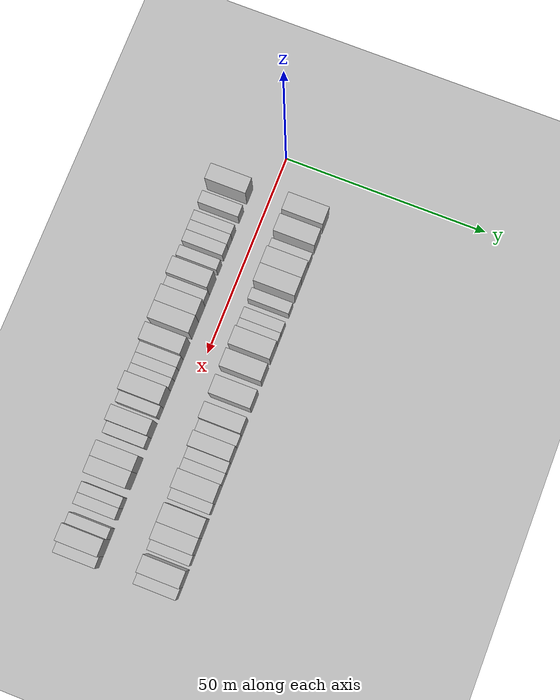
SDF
<sdf version="1.6">
 <world name="default">
  <include><name>ground_plane_1</name><uri>model://HANNAS_ground_plane</uri></include>
  <include>
   <name>ground_plane_2</name>
   <uri>model://HANNAS_ground_plane</uri>
   <pose>100 0 0  0 0 0</pose>
  </include>
  <model name="building_1">
   <static>1</static>
   <pose>12.1943 9.5000 0 0.000000 0.000000 1.570796</pose>
   <link name="link">
    <pose>0 0 4.50 0 0 0</pose>
    <collision name="collision"><geometry><box><size>10.0000 4.3886 9.0000</size></box></geometry></collision>
    <visual name="visual">
     <cast_shadows>0</cast_shadows>
     <geometry><box><size>10.0000 4.3886 9.0000</size></box></geometry>
     <material>
      <script>
       <uri>model://HANNAS_wall/materials/scripts</uri>
       <uri>model://HANNAS_wall/materials/textures</uri>
       <name>vrc/HANNAS_wall</name>
      </script>
     </material>
    </visual>
   </link>
  </model>
  <model name="building_2">
   <static>1</static>
   <pose>17.5279 9.5000 0 0.000000 0.000000 1.570796</pose>
   <link name="link">
    <pose>0 0 4.50 0 0 0</pose>
    <collision name="collision"><geometry><box><size>10.0000 4.2786 9.0000</size></box></geometry></collision>
    <visual name="visual">
     <cast_shadows>0</cast_shadows>
     <geometry><box><size>10.0000 4.2786 9.0000</size></box></geometry>
     <material>
      <script>
       <uri>model://HANNAS_wall/materials/scripts</uri>
       <uri>model://HANNAS_wall/materials/textures</uri>
       <name>vrc/HANNAS_wall</name>
      </script>
     </material>
    </visual>
   </link>
  </model>
  <model name="building_3">
   <static>1</static>
   <pose>22.0547 9.5000 0 0.000000 0.000000 1.570796</pose>
   <link name="link">
    <pose>0 0 3.00 0 0 0</pose>
    <collision name="collision"><geometry><box><size>10.0000 2.7752 6.0000</size></box></geometry></collision>
    <visual name="visual">
     <cast_shadows>0</cast_shadows>
     <geometry><box><size>10.0000 2.7752 6.0000</size></box></geometry>
     <material>
      <script>
       <uri>model://HANNAS_wall/materials/scripts</uri>
       <uri>model://HANNAS_wall/materials/textures</uri>
       <name>vrc/HANNAS_wall</name>
      </script>
     </material>
    </visual>
   </link>
  </model>
  <model name="building_4">
   <static>1</static>
   <pose>25.5473 9.5000 0 0.000000 0.000000 1.570796</pose>
   <link name="link">
    <pose>0 0 4.50 0 0 0</pose>
    <collision name="collision"><geometry><box><size>10.0000 4.2099 9.0000</size></box></geometry></collision>
    <visual name="visual">
     <cast_shadows>0</cast_shadows>
     <geometry><box><size>10.0000 4.2099 9.0000</size></box></geometry>
     <material>
      <script>
       <uri>model://HANNAS_wall/materials/scripts</uri>
       <uri>model://HANNAS_wall/materials/textures</uri>
       <name>vrc/HANNAS_wall</name>
      </script>
     </material>
    </visual>
   </link>
  </model>
  <model name="building_5">
   <static>1</static>
   <pose>29.8634 9.5000 0 0.000000 0.000000 1.570796</pose>
   <link name="link">
    <pose>0 0 4.50 0 0 0</pose>
    <collision name="collision"><geometry><box><size>10.0000 4.4223 9.0000</size></box></geometry></collision>
    <visual name="visual">
     <cast_shadows>0</cast_shadows>
     <geometry><box><size>10.0000 4.4223 9.0000</size></box></geometry>
     <material>
      <script>
       <uri>model://HANNAS_wall/materials/scripts</uri>
       <uri>model://HANNAS_wall/materials/textures</uri>
       <name>vrc/HANNAS_wall</name>
      </script>
     </material>
    </visual>
   </link>
  </model>
  <model name="building_6">
   <static>1</static>
   <pose>34.4579 9.5000 0 0.000000 0.000000 1.570796</pose>
   <link name="link">
    <pose>0 0 3.00 0 0 0</pose>
    <collision name="collision"><geometry><box><size>10.0000 2.7668 6.0000</size></box></geometry></collision>
    <visual name="visual">
     <cast_shadows>0</cast_shadows>
     <geometry><box><size>10.0000 2.7668 6.0000</size></box></geometry>
     <material>
      <script>
       <uri>model://HANNAS_wall/materials/scripts</uri>
       <uri>model://HANNAS_wall/materials/textures</uri>
       <name>vrc/HANNAS_wall</name>
      </script>
     </material>
    </visual>
   </link>
  </model>
  <model name="building_7">
   <static>1</static>
   <pose>39.2007 9.5000 0 0.000000 0.000000 1.570796</pose>
   <link name="link">
    <pose>0 0 3.00 0 0 0</pose>
    <collision name="collision"><geometry><box><size>10.0000 2.7189 6.0000</size></box></geometry></collision>
    <visual name="visual">
     <cast_shadows>0</cast_shadows>
     <geometry><box><size>10.0000 2.7189 6.0000</size></box></geometry>
     <material>
      <script>
       <uri>model://HANNAS_wall/materials/scripts</uri>
       <uri>model://HANNAS_wall/materials/textures</uri>
       <name>vrc/HANNAS_wall</name>
      </script>
     </material>
    </visual>
   </link>
  </model>
  <model name="building_8">
   <static>1</static>
   <pose>41.7880 9.5000 0 0.000000 0.000000 1.570796</pose>
   <link name="link">
    <pose>0 0 3.00 0 0 0</pose>
    <collision name="collision"><geometry><box><size>10.0000 2.4557 6.0000</size></box></geometry></collision>
    <visual name="visual">
     <cast_shadows>0</cast_shadows>
     <geometry><box><size>10.0000 2.4557 6.0000</size></box></geometry>
     <material>
      <script>
       <uri>model://HANNAS_wall/materials/scripts</uri>
       <uri>model://HANNAS_wall/materials/textures</uri>
       <name>vrc/HANNAS_wall</name>
      </script>
     </material>
    </visual>
   </link>
  </model>
  <model name="building_9">
   <static>1</static>
   <pose>45.2294 9.5000 0 0.000000 0.000000 1.570796</pose>
   <link name="link">
    <pose>0 0 4.50 0 0 0</pose>
    <collision name="collision"><geometry><box><size>10.0000 4.4270 9.0000</size></box></geometry></collision>
    <visual name="visual">
     <cast_shadows>0</cast_shadows>
     <geometry><box><size>10.0000 4.4270 9.0000</size></box></geometry>
     <material>
      <script>
       <uri>model://HANNAS_wall/materials/scripts</uri>
       <uri>model://HANNAS_wall/materials/textures</uri>
       <name>vrc/HANNAS_wall</name>
      </script>
     </material>
    </visual>
   </link>
  </model>
  <model name="building_10">
   <static>1</static>
   <pose>50.6140 9.5000 0 0.000000 0.000000 1.570796</pose>
   <link name="link">
    <pose>0 0 4.50 0 0 0</pose>
    <collision name="collision"><geometry><box><size>10.0000 4.3423 9.0000</size></box></geometry></collision>
    <visual name="visual">
     <cast_shadows>0</cast_shadows>
     <geometry><box><size>10.0000 4.3423 9.0000</size></box></geometry>
     <material>
      <script>
       <uri>model://HANNAS_wall/materials/scripts</uri>
       <uri>model://HANNAS_wall/materials/textures</uri>
       <name>vrc/HANNAS_wall</name>
      </script>
     </material>
    </visual>
   </link>
  </model>
  <model name="building_11">
   <static>1</static>
   <pose>57.0152 9.5000 0 0.000000 0.000000 1.570796</pose>
   <link name="link">
    <pose>0 0 4.50 0 0 0</pose>
    <collision name="collision"><geometry><box><size>10.0000 4.4601 9.0000</size></box></geometry></collision>
    <visual name="visual">
     <cast_shadows>0</cast_shadows>
     <geometry><box><size>10.0000 4.4601 9.0000</size></box></geometry>
     <material>
      <script>
       <uri>model://HANNAS_wall/materials/scripts</uri>
       <uri>model://HANNAS_wall/materials/textures</uri>
       <name>vrc/HANNAS_wall</name>
      </script>
     </material>
    </visual>
   </link>
  </model>
  <model name="building_12">
   <static>1</static>
   <pose>63.1867 9.5000 0 0.000000 0.000000 1.570796</pose>
   <link name="link">
    <pose>0 0 4.50 0 0 0</pose>
    <collision name="collision"><geometry><box><size>10.0000 3.8828 9.0000</size></box></geometry></collision>
    <visual name="visual">
     <cast_shadows>0</cast_shadows>
     <geometry><box><size>10.0000 3.8828 9.0000</size></box></geometry>
     <material>
      <script>
       <uri>model://HANNAS_wall/materials/scripts</uri>
       <uri>model://HANNAS_wall/materials/textures</uri>
       <name>vrc/HANNAS_wall</name>
      </script>
     </material>
    </visual>
   </link>
  </model>
  <model name="building_13">
   <static>1</static>
   <pose>66.5711 9.5000 0 0.000000 0.000000 1.570796</pose>
   <link name="link">
    <pose>0 0 3.00 0 0 0</pose>
    <collision name="collision"><geometry><box><size>10.0000 2.8859 6.0000</size></box></geometry></collision>
    <visual name="visual">
     <cast_shadows>0</cast_shadows>
     <geometry><box><size>10.0000 2.8859 6.0000</size></box></geometry>
     <material>
      <script>
       <uri>model://HANNAS_wall/materials/scripts</uri>
       <uri>model://HANNAS_wall/materials/textures</uri>
       <name>vrc/HANNAS_wall</name>
      </script>
     </material>
    </visual>
   </link>
  </model>
  <model name="building_14">
   <static>1</static>
   <pose>69.8348 9.5000 0 0.000000 0.000000 1.570796</pose>
   <link name="link">
    <pose>0 0 4.50 0 0 0</pose>
    <collision name="collision"><geometry><box><size>10.0000 3.6416 9.0000</size></box></geometry></collision>
    <visual name="visual">
     <cast_shadows>0</cast_shadows>
     <geometry><box><size>10.0000 3.6416 9.0000</size></box></geometry>
     <material>
      <script>
       <uri>model://HANNAS_wall/materials/scripts</uri>
       <uri>model://HANNAS_wall/materials/textures</uri>
       <name>vrc/HANNAS_wall</name>
      </script>
     </material>
    </visual>
   </link>
  </model>
  <model name="building_15">
   <static>1</static>
   <pose>72.9685 9.5000 0 0.000000 0.000000 1.570796</pose>
   <link name="link">
    <pose>0 0 3.00 0 0 0</pose>
    <collision name="collision"><geometry><box><size>10.0000 2.6257 6.0000</size></box></geometry></collision>
    <visual name="visual">
     <cast_shadows>0</cast_shadows>
     <geometry><box><size>10.0000 2.6257 6.0000</size></box></geometry>
     <material>
      <script>
       <uri>model://HANNAS_wall/materials/scripts</uri>
       <uri>model://HANNAS_wall/materials/textures</uri>
       <name>vrc/HANNAS_wall</name>
      </script>
     </material>
    </visual>
   </link>
  </model>
  <model name="building_16">
   <static>1</static>
   <pose>75.6257 9.5000 0 0.000000 0.000000 1.570796</pose>
   <link name="link">
    <pose>0 0 3.00 0 0 0</pose>
    <collision name="collision"><geometry><box><size>10.0000 2.6889 6.0000</size></box></geometry></collision>
    <visual name="visual">
     <cast_shadows>0</cast_shadows>
     <geometry><box><size>10.0000 2.6889 6.0000</size></box></geometry>
     <material>
      <script>
       <uri>model://HANNAS_wall/materials/scripts</uri>
       <uri>model://HANNAS_wall/materials/textures</uri>
       <name>vrc/HANNAS_wall</name>
      </script>
     </material>
    </visual>
   </link>
  </model>
  <model name="building_17">
   <static>1</static>
   <pose>79.1832 9.5000 0 0.000000 0.000000 1.570796</pose>
   <link name="link">
    <pose>0 0 4.50 0 0 0</pose>
    <collision name="collision"><geometry><box><size>10.0000 4.4260 9.0000</size></box></geometry></collision>
    <visual name="visual">
     <cast_shadows>0</cast_shadows>
     <geometry><box><size>10.0000 4.4260 9.0000</size></box></geometry>
     <material>
      <script>
       <uri>model://HANNAS_wall/materials/scripts</uri>
       <uri>model://HANNAS_wall/materials/textures</uri>
       <name>vrc/HANNAS_wall</name>
      </script>
     </material>
    </visual>
   </link>
  </model>
  <model name="building_18">
   <static>1</static>
   <pose>82.6501 9.5000 0 0.000000 0.000000 1.570796</pose>
   <link name="link">
    <pose>0 0 3.00 0 0 0</pose>
    <collision name="collision"><geometry><box><size>10.0000 2.5079 6.0000</size></box></geometry></collision>
    <visual name="visual">
     <cast_shadows>0</cast_shadows>
     <geometry><box><size>10.0000 2.5079 6.0000</size></box></geometry>
     <material>
      <script>
       <uri>model://HANNAS_wall/materials/scripts</uri>
       <uri>model://HANNAS_wall/materials/textures</uri>
       <name>vrc/HANNAS_wall</name>
      </script>
     </material>
    </visual>
   </link>
  </model>
  <model name="building_19">
   <static>1</static>
   <pose>87.1406 9.5000 0 0.000000 0.000000 1.570796</pose>
   <link name="link">
    <pose>0 0 4.50 0 0 0</pose>
    <collision name="collision"><geometry><box><size>10.0000 4.4731 9.0000</size></box></geometry></collision>
    <visual name="visual">
     <cast_shadows>0</cast_shadows>
     <geometry><box><size>10.0000 4.4731 9.0000</size></box></geometry>
     <material>
      <script>
       <uri>model://HANNAS_wall/materials/scripts</uri>
       <uri>model://HANNAS_wall/materials/textures</uri>
       <name>vrc/HANNAS_wall</name>
      </script>
     </material>
    </visual>
   </link>
  </model>
  <model name="building_20">
   <static>1</static>
   <pose>91.3260 9.5000 0 0.000000 0.000000 1.570796</pose>
   <link name="link">
    <pose>0 0 4.50 0 0 0</pose>
    <collision name="collision"><geometry><box><size>10.0000 3.8978 9.0000</size></box></geometry></collision>
    <visual name="visual">
     <cast_shadows>0</cast_shadows>
     <geometry><box><size>10.0000 3.8978 9.0000</size></box></geometry>
     <material>
      <script>
       <uri>model://HANNAS_wall/materials/scripts</uri>
       <uri>model://HANNAS_wall/materials/textures</uri>
       <name>vrc/HANNAS_wall</name>
      </script>
     </material>
    </visual>
   </link>
  </model>
  <model name="building_21">
   <static>1</static>
   <pose>94.5484 9.5000 0 0.000000 0.000000 1.570796</pose>
   <link name="link">
    <pose>0 0 3.00 0 0 0</pose>
    <collision name="collision"><geometry><box><size>10.0000 2.5469 6.0000</size></box></geometry></collision>
    <visual name="visual">
     <cast_shadows>0</cast_shadows>
     <geometry><box><size>10.0000 2.5469 6.0000</size></box></geometry>
     <material>
      <script>
       <uri>model://HANNAS_wall/materials/scripts</uri>
       <uri>model://HANNAS_wall/materials/textures</uri>
       <name>vrc/HANNAS_wall</name>
      </script>
     </material>
    </visual>
   </link>
  </model>
  <model name="building_22">
   <static>1</static>
   <pose>98.8495 9.5000 0 0.000000 0.000000 1.570796</pose>
   <link name="link">
    <pose>0 0 4.50 0 0 0</pose>
    <collision name="collision"><geometry><box><size>10.0000 4.0554 9.0000</size></box></geometry></collision>
    <visual name="visual">
     <cast_shadows>0</cast_shadows>
     <geometry><box><size>10.0000 4.0554 9.0000</size></box></geometry>
     <material>
      <script>
       <uri>model://HANNAS_wall/materials/scripts</uri>
       <uri>model://HANNAS_wall/materials/textures</uri>
       <name>vrc/HANNAS_wall</name>
      </script>
     </material>
    </visual>
   </link>
  </model>
  <model name="building_23">
   <static>1</static>
   <pose>102.2516 9.5000 0 0.000000 0.000000 1.570796</pose>
   <link name="link">
    <pose>0 0 3.00 0 0 0</pose>
    <collision name="collision"><geometry><box><size>10.0000 2.7488 6.0000</size></box></geometry></collision>
    <visual name="visual">
     <cast_shadows>0</cast_shadows>
     <geometry><box><size>10.0000 2.7488 6.0000</size></box></geometry>
     <material>
      <script>
       <uri>model://HANNAS_wall/materials/scripts</uri>
       <uri>model://HANNAS_wall/materials/textures</uri>
       <name>vrc/HANNAS_wall</name>
      </script>
     </material>
    </visual>
   </link>
  </model>
  <model name="building_46">
   <static>1</static>
   <pose>11.9577 -9.5000 0 0.000000 0.000000 1.570796</pose>
   <link name="link">
    <pose>0 0 4.50 0 0 0</pose>
    <collision name="collision"><geometry><box><size>10.0000 3.9154 9.0000</size></box></geometry></collision>
    <visual name="visual">
     <cast_shadows>0</cast_shadows>
     <geometry><box><size>10.0000 3.9154 9.0000</size></box></geometry>
     <material>
      <script>
       <uri>model://HANNAS_wall/materials/scripts</uri>
       <uri>model://HANNAS_wall/materials/textures</uri>
       <name>vrc/HANNAS_wall</name>
      </script>
     </material>
    </visual>
   </link>
  </model>
  <model name="building_47">
   <static>1</static>
   <pose>17.4092 -9.5000 0 0.000000 0.000000 1.570796</pose>
   <link name="link">
    <pose>0 0 3.00 0 0 0</pose>
    <collision name="collision"><geometry><box><size>10.0000 2.9876 6.0000</size></box></geometry></collision>
    <visual name="visual">
     <cast_shadows>0</cast_shadows>
     <geometry><box><size>10.0000 2.9876 6.0000</size></box></geometry>
     <material>
      <script>
       <uri>model://HANNAS_wall/materials/scripts</uri>
       <uri>model://HANNAS_wall/materials/textures</uri>
       <name>vrc/HANNAS_wall</name>
      </script>
     </material>
    </visual>
   </link>
  </model>
  <model name="building_48">
   <static>1</static>
   <pose>22.1159 -9.5000 0 0.000000 0.000000 1.570796</pose>
   <link name="link">
    <pose>0 0 3.00 0 0 0</pose>
    <collision name="collision"><geometry><box><size>10.0000 2.4259 6.0000</size></box></geometry></collision>
    <visual name="visual">
     <cast_shadows>0</cast_shadows>
     <geometry><box><size>10.0000 2.4259 6.0000</size></box></geometry>
     <material>
      <script>
       <uri>model://HANNAS_wall/materials/scripts</uri>
       <uri>model://HANNAS_wall/materials/textures</uri>
       <name>vrc/HANNAS_wall</name>
      </script>
     </material>
    </visual>
   </link>
  </model>
  <model name="building_49">
   <static>1</static>
   <pose>24.5654 -9.5000 0 0.000000 0.000000 1.570796</pose>
   <link name="link">
    <pose>0 0 3.00 0 0 0</pose>
    <collision name="collision"><geometry><box><size>10.0000 2.4730 6.0000</size></box></geometry></collision>
    <visual name="visual">
     <cast_shadows>0</cast_shadows>
     <geometry><box><size>10.0000 2.4730 6.0000</size></box></geometry>
     <material>
      <script>
       <uri>model://HANNAS_wall/materials/scripts</uri>
       <uri>model://HANNAS_wall/materials/textures</uri>
       <name>vrc/HANNAS_wall</name>
      </script>
     </material>
    </visual>
   </link>
  </model>
  <model name="building_50">
   <static>1</static>
   <pose>27.2421 -9.5000 0 0.000000 0.000000 1.570796</pose>
   <link name="link">
    <pose>0 0 3.00 0 0 0</pose>
    <collision name="collision"><geometry><box><size>10.0000 2.8804 6.0000</size></box></geometry></collision>
    <visual name="visual">
     <cast_shadows>0</cast_shadows>
     <geometry><box><size>10.0000 2.8804 6.0000</size></box></geometry>
     <material>
      <script>
       <uri>model://HANNAS_wall/materials/scripts</uri>
       <uri>model://HANNAS_wall/materials/textures</uri>
       <name>vrc/HANNAS_wall</name>
      </script>
     </material>
    </visual>
   </link>
  </model>
  <model name="building_51">
   <static>1</static>
   <pose>30.9882 -9.5000 0 0.000000 0.000000 1.570796</pose>
   <link name="link">
    <pose>0 0 3.00 0 0 0</pose>
    <collision name="collision"><geometry><box><size>10.0000 2.6118 6.0000</size></box></geometry></collision>
    <visual name="visual">
     <cast_shadows>0</cast_shadows>
     <geometry><box><size>10.0000 2.6118 6.0000</size></box></geometry>
     <material>
      <script>
       <uri>model://HANNAS_wall/materials/scripts</uri>
       <uri>model://HANNAS_wall/materials/textures</uri>
       <name>vrc/HANNAS_wall</name>
      </script>
     </material>
    </visual>
   </link>
  </model>
  <model name="building_52">
   <static>1</static>
   <pose>35.3466 -9.5000 0 0.000000 0.000000 1.570796</pose>
   <link name="link">
    <pose>0 0 4.50 0 0 0</pose>
    <collision name="collision"><geometry><box><size>10.0000 4.1050 9.0000</size></box></geometry></collision>
    <visual name="visual">
     <cast_shadows>0</cast_shadows>
     <geometry><box><size>10.0000 4.1050 9.0000</size></box></geometry>
     <material>
      <script>
       <uri>model://HANNAS_wall/materials/scripts</uri>
       <uri>model://HANNAS_wall/materials/textures</uri>
       <name>vrc/HANNAS_wall</name>
      </script>
     </material>
    </visual>
   </link>
  </model>
  <model name="building_53">
   <static>1</static>
   <pose>38.8049 -9.5000 0 0.000000 0.000000 1.570796</pose>
   <link name="link">
    <pose>0 0 3.00 0 0 0</pose>
    <collision name="collision"><geometry><box><size>10.0000 2.8116 6.0000</size></box></geometry></collision>
    <visual name="visual">
     <cast_shadows>0</cast_shadows>
     <geometry><box><size>10.0000 2.8116 6.0000</size></box></geometry>
     <material>
      <script>
       <uri>model://HANNAS_wall/materials/scripts</uri>
       <uri>model://HANNAS_wall/materials/textures</uri>
       <name>vrc/HANNAS_wall</name>
      </script>
     </material>
    </visual>
   </link>
  </model>
  <model name="building_54">
   <static>1</static>
   <pose>42.1962 -9.5000 0 0.000000 0.000000 1.570796</pose>
   <link name="link">
    <pose>0 0 4.50 0 0 0</pose>
    <collision name="collision"><geometry><box><size>10.0000 3.9709 9.0000</size></box></geometry></collision>
    <visual name="visual">
     <cast_shadows>0</cast_shadows>
     <geometry><box><size>10.0000 3.9709 9.0000</size></box></geometry>
     <material>
      <script>
       <uri>model://HANNAS_wall/materials/scripts</uri>
       <uri>model://HANNAS_wall/materials/textures</uri>
       <name>vrc/HANNAS_wall</name>
      </script>
     </material>
    </visual>
   </link>
  </model>
  <model name="building_55">
   <static>1</static>
   <pose>46.3022 -9.5000 0 0.000000 0.000000 1.570796</pose>
   <link name="link">
    <pose>0 0 4.50 0 0 0</pose>
    <collision name="collision"><geometry><box><size>10.0000 4.2412 9.0000</size></box></geometry></collision>
    <visual name="visual">
     <cast_shadows>0</cast_shadows>
     <geometry><box><size>10.0000 4.2412 9.0000</size></box></geometry>
     <material>
      <script>
       <uri>model://HANNAS_wall/materials/scripts</uri>
       <uri>model://HANNAS_wall/materials/textures</uri>
       <name>vrc/HANNAS_wall</name>
      </script>
     </material>
    </visual>
   </link>
  </model>
  <model name="building_56">
   <static>1</static>
   <pose>51.4993 -9.5000 0 0.000000 0.000000 1.570796</pose>
   <link name="link">
    <pose>0 0 4.50 0 0 0</pose>
    <collision name="collision"><geometry><box><size>10.0000 4.1528 9.0000</size></box></geometry></collision>
    <visual name="visual">
     <cast_shadows>0</cast_shadows>
     <geometry><box><size>10.0000 4.1528 9.0000</size></box></geometry>
     <material>
      <script>
       <uri>model://HANNAS_wall/materials/scripts</uri>
       <uri>model://HANNAS_wall/materials/textures</uri>
       <name>vrc/HANNAS_wall</name>
      </script>
     </material>
    </visual>
   </link>
  </model>
  <model name="building_57">
   <static>1</static>
   <pose>54.9231 -9.5000 0 0.000000 0.000000 1.570796</pose>
   <link name="link">
    <pose>0 0 3.00 0 0 0</pose>
    <collision name="collision"><geometry><box><size>10.0000 2.6949 6.0000</size></box></geometry></collision>
    <visual name="visual">
     <cast_shadows>0</cast_shadows>
     <geometry><box><size>10.0000 2.6949 6.0000</size></box></geometry>
     <material>
      <script>
       <uri>model://HANNAS_wall/materials/scripts</uri>
       <uri>model://HANNAS_wall/materials/textures</uri>
       <name>vrc/HANNAS_wall</name>
      </script>
     </material>
    </visual>
   </link>
  </model>
  <model name="building_58">
   <static>1</static>
   <pose>57.5775 -9.5000 0 0.000000 0.000000 1.570796</pose>
   <link name="link">
    <pose>0 0 3.00 0 0 0</pose>
    <collision name="collision"><geometry><box><size>10.0000 2.6140 6.0000</size></box></geometry></collision>
    <visual name="visual">
     <cast_shadows>0</cast_shadows>
     <geometry><box><size>10.0000 2.6140 6.0000</size></box></geometry>
     <material>
      <script>
       <uri>model://HANNAS_wall/materials/scripts</uri>
       <uri>model://HANNAS_wall/materials/textures</uri>
       <name>vrc/HANNAS_wall</name>
      </script>
     </material>
    </visual>
   </link>
  </model>
  <model name="building_59">
   <static>1</static>
   <pose>60.0878 -9.5000 0 0.000000 0.000000 1.570796</pose>
   <link name="link">
    <pose>0 0 3.00 0 0 0</pose>
    <collision name="collision"><geometry><box><size>10.0000 2.4065 6.0000</size></box></geometry></collision>
    <visual name="visual">
     <cast_shadows>0</cast_shadows>
     <geometry><box><size>10.0000 2.4065 6.0000</size></box></geometry>
     <material>
      <script>
       <uri>model://HANNAS_wall/materials/scripts</uri>
       <uri>model://HANNAS_wall/materials/textures</uri>
       <name>vrc/HANNAS_wall</name>
      </script>
     </material>
    </visual>
   </link>
  </model>
  <model name="building_60">
   <static>1</static>
   <pose>63.4364 -9.5000 0 0.000000 0.000000 1.570796</pose>
   <link name="link">
    <pose>0 0 4.50 0 0 0</pose>
    <collision name="collision"><geometry><box><size>10.0000 4.2907 9.0000</size></box></geometry></collision>
    <visual name="visual">
     <cast_shadows>0</cast_shadows>
     <geometry><box><size>10.0000 4.2907 9.0000</size></box></geometry>
     <material>
      <script>
       <uri>model://HANNAS_wall/materials/scripts</uri>
       <uri>model://HANNAS_wall/materials/textures</uri>
       <name>vrc/HANNAS_wall</name>
      </script>
     </material>
    </visual>
   </link>
  </model>
  <model name="building_61">
   <static>1</static>
   <pose>66.9179 -9.5000 0 0.000000 0.000000 1.570796</pose>
   <link name="link">
    <pose>0 0 3.00 0 0 0</pose>
    <collision name="collision"><geometry><box><size>10.0000 2.6722 6.0000</size></box></geometry></collision>
    <visual name="visual">
     <cast_shadows>0</cast_shadows>
     <geometry><box><size>10.0000 2.6722 6.0000</size></box></geometry>
     <material>
      <script>
       <uri>model://HANNAS_wall/materials/scripts</uri>
       <uri>model://HANNAS_wall/materials/textures</uri>
       <name>vrc/HANNAS_wall</name>
      </script>
     </material>
    </visual>
   </link>
  </model>
  <model name="building_62">
   <static>1</static>
   <pose>71.0779 -9.5000 0 0.000000 0.000000 1.570796</pose>
   <link name="link">
    <pose>0 0 4.50 0 0 0</pose>
    <collision name="collision"><geometry><box><size>10.0000 3.6479 9.0000</size></box></geometry></collision>
    <visual name="visual">
     <cast_shadows>0</cast_shadows>
     <geometry><box><size>10.0000 3.6479 9.0000</size></box></geometry>
     <material>
      <script>
       <uri>model://HANNAS_wall/materials/scripts</uri>
       <uri>model://HANNAS_wall/materials/textures</uri>
       <name>vrc/HANNAS_wall</name>
      </script>
     </material>
    </visual>
   </link>
  </model>
  <model name="building_63">
   <static>1</static>
   <pose>74.2805 -9.5000 0 0.000000 0.000000 1.570796</pose>
   <link name="link">
    <pose>0 0 3.00 0 0 0</pose>
    <collision name="collision"><geometry><box><size>10.0000 2.7573 6.0000</size></box></geometry></collision>
    <visual name="visual">
     <cast_shadows>0</cast_shadows>
     <geometry><box><size>10.0000 2.7573 6.0000</size></box></geometry>
     <material>
      <script>
       <uri>model://HANNAS_wall/materials/scripts</uri>
       <uri>model://HANNAS_wall/materials/textures</uri>
       <name>vrc/HANNAS_wall</name>
      </script>
     </material>
    </visual>
   </link>
  </model>
  <model name="building_64">
   <static>1</static>
   <pose>79.5000 -9.5000 0 0.000000 0.000000 1.570796</pose>
   <link name="link">
    <pose>0 0 4.50 0 0 0</pose>
    <collision name="collision"><geometry><box><size>10.0000 3.6819 9.0000</size></box></geometry></collision>
    <visual name="visual">
     <cast_shadows>0</cast_shadows>
     <geometry><box><size>10.0000 3.6819 9.0000</size></box></geometry>
     <material>
      <script>
       <uri>model://HANNAS_wall/materials/scripts</uri>
       <uri>model://HANNAS_wall/materials/textures</uri>
       <name>vrc/HANNAS_wall</name>
      </script>
     </material>
    </visual>
   </link>
  </model>
  <model name="building_65">
   <static>1</static>
   <pose>83.2875 -9.5000 0 0.000000 0.000000 1.570796</pose>
   <link name="link">
    <pose>0 0 4.50 0 0 0</pose>
    <collision name="collision"><geometry><box><size>10.0000 3.8930 9.0000</size></box></geometry></collision>
    <visual name="visual">
     <cast_shadows>0</cast_shadows>
     <geometry><box><size>10.0000 3.8930 9.0000</size></box></geometry>
     <material>
      <script>
       <uri>model://HANNAS_wall/materials/scripts</uri>
       <uri>model://HANNAS_wall/materials/textures</uri>
       <name>vrc/HANNAS_wall</name>
      </script>
     </material>
    </visual>
   </link>
  </model>
  <model name="building_66">
   <static>1</static>
   <pose>88.5007 -9.5000 0 0.000000 0.000000 1.570796</pose>
   <link name="link">
    <pose>0 0 3.00 0 0 0</pose>
    <collision name="collision"><geometry><box><size>10.0000 2.5334 6.0000</size></box></geometry></collision>
    <visual name="visual">
     <cast_shadows>0</cast_shadows>
     <geometry><box><size>10.0000 2.5334 6.0000</size></box></geometry>
     <material>
      <script>
       <uri>model://HANNAS_wall/materials/scripts</uri>
       <uri>model://HANNAS_wall/materials/textures</uri>
       <name>vrc/HANNAS_wall</name>
      </script>
     </material>
    </visual>
   </link>
  </model>
  <model name="building_67">
   <static>1</static>
   <pose>91.0896 -9.5000 0 0.000000 0.000000 1.570796</pose>
   <link name="link">
    <pose>0 0 3.00 0 0 0</pose>
    <collision name="collision"><geometry><box><size>10.0000 2.6444 6.0000</size></box></geometry></collision>
    <visual name="visual">
     <cast_shadows>0</cast_shadows>
     <geometry><box><size>10.0000 2.6444 6.0000</size></box></geometry>
     <material>
      <script>
       <uri>model://HANNAS_wall/materials/scripts</uri>
       <uri>model://HANNAS_wall/materials/textures</uri>
       <name>vrc/HANNAS_wall</name>
      </script>
     </material>
    </visual>
   </link>
  </model>
  <model name="building_68">
   <static>1</static>
   <pose>95.6912 -9.5000 0 0.000000 0.000000 1.570796</pose>
   <link name="link">
    <pose>0 0 3.00 0 0 0</pose>
    <collision name="collision"><geometry><box><size>10.0000 2.5589 6.0000</size></box></geometry></collision>
    <visual name="visual">
     <cast_shadows>0</cast_shadows>
     <geometry><box><size>10.0000 2.5589 6.0000</size></box></geometry>
     <material>
      <script>
       <uri>model://HANNAS_wall/materials/scripts</uri>
       <uri>model://HANNAS_wall/materials/textures</uri>
       <name>vrc/HANNAS_wall</name>
      </script>
     </material>
    </visual>
   </link>
  </model>
  <model name="building_69">
   <static>1</static>
   <pose>98.9808 -9.5000 0 0.000000 0.000000 1.570796</pose>
   <link name="link">
    <pose>0 0 4.50 0 0 0</pose>
    <collision name="collision"><geometry><box><size>10.0000 4.0202 9.0000</size></box></geometry></collision>
    <visual name="visual">
     <cast_shadows>0</cast_shadows>
     <geometry><box><size>10.0000 4.0202 9.0000</size></box></geometry>
     <material>
      <script>
       <uri>model://HANNAS_wall/materials/scripts</uri>
       <uri>model://HANNAS_wall/materials/textures</uri>
       <name>vrc/HANNAS_wall</name>
      </script>
     </material>
    </visual>
   </link>
  </model>
  <model name="building_70">
   <static>1</static>
   <pose>102.3470 -9.5000 0 0.000000 0.000000 1.570796</pose>
   <link name="link">
    <pose>0 0 3.00 0 0 0</pose>
    <collision name="collision"><geometry><box><size>10.0000 2.7123 6.0000</size></box></geometry></collision>
    <visual name="visual">
     <cast_shadows>0</cast_shadows>
     <geometry><box><size>10.0000 2.7123 6.0000</size></box></geometry>
     <material>
      <script>
       <uri>model://HANNAS_wall/materials/scripts</uri>
       <uri>model://HANNAS_wall/materials/textures</uri>
       <name>vrc/HANNAS_wall</name>
      </script>
     </material>
    </visual>
   </link>
  </model>
 </world>
</sdf>
